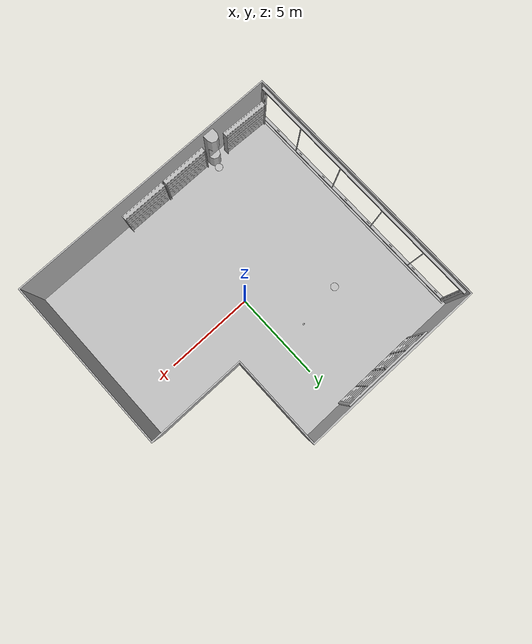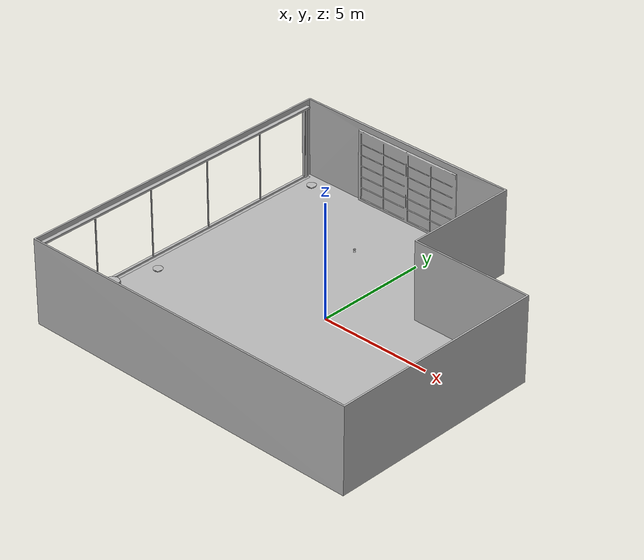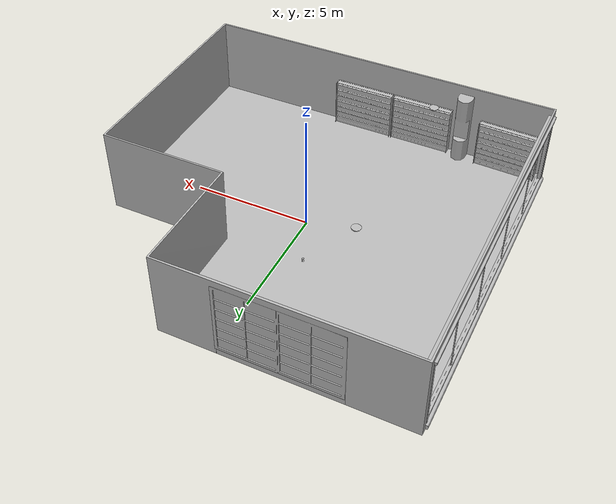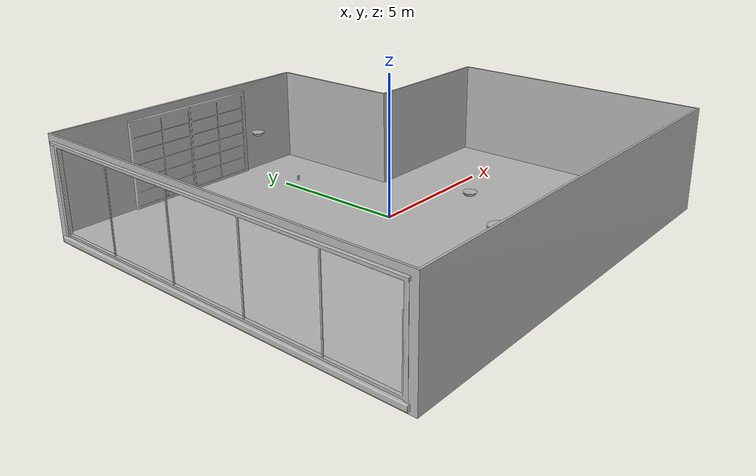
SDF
<sdf version="1.7">
 <world name="default">
  <model name="BookshelfB_01_001">
   <frame name="aws_robomaker_retail_BookshelfB_01::__model__" attached_to="aws_robomaker_retail_BookshelfB_01::link">
    <pose relative_to="__model__">0 0 0 0 -0 0</pose>
   </frame>
   <link name="aws_robomaker_retail_BookshelfB_01::link">
    <inertial>
     <mass>50</mass>
     <inertia><ixx>19.8742</ixx><ixy>0</ixy><ixz>0</ixz><iyy>49.1263</iyy><iyz>0</iyz><izz>30.2231</izz></inertia>
    </inertial>
    <collision name="collision">
     <geometry>
      <mesh>
       <uri>file://models/aws_robomaker_retail_BookshelfB_01/meshes/aws_BookshelfB_01_collision.DAE</uri>
       <scale>1 1 1</scale>
      </mesh>
     </geometry>
    </collision>
    <visual name="visual">
     <geometry>
      <mesh><uri>file://models/aws_robomaker_retail_BookshelfB_01/meshes/aws_BookshelfB_01_visual.DAE</uri></mesh>
     </geometry>
     <meta><layer>1</layer></meta>
    </visual>
    <pose relative_to="aws_robomaker_retail_BookshelfB_01::__model__">0 0 0 0 -0 0</pose>
   </link>
   <static>1</static>
   <pose>-6.18968 -6.78565 -0.008942 0.003533 0.000121 -0.032073</pose>
  </model>
  <model name="BookshelfB_01_002">
   <frame name="aws_robomaker_retail_BookshelfB_01::__model__" attached_to="aws_robomaker_retail_BookshelfB_01::link">
    <pose relative_to="__model__">0 0 0 0 -0 0</pose>
   </frame>
   <link name="aws_robomaker_retail_BookshelfB_01::link">
    <inertial>
     <mass>50</mass>
     <inertia><ixx>19.8742</ixx><ixy>0</ixy><ixz>0</ixz><iyy>49.1263</iyy><iyz>0</iyz><izz>30.2231</izz></inertia>
    </inertial>
    <collision name="collision">
     <geometry>
      <mesh>
       <uri>file://models/aws_robomaker_retail_BookshelfB_01/meshes/aws_BookshelfB_01_collision.DAE</uri>
       <scale>1 1 1</scale>
      </mesh>
     </geometry>
    </collision>
    <visual name="visual">
     <geometry>
      <mesh><uri>file://models/aws_robomaker_retail_BookshelfB_01/meshes/aws_BookshelfB_01_visual.DAE</uri></mesh>
     </geometry>
     <meta><layer>1</layer></meta>
    </visual>
    <pose relative_to="aws_robomaker_retail_BookshelfB_01::__model__">0 0 0 0 -0 0</pose>
   </link>
   <static>1</static>
   <pose>-2.20941 -6.97146 0.017074 -0.000128 -0.000252 0.000364</pose>
  </model>
  <model name="BookshelfB_01_003">
   <frame name="aws_robomaker_retail_BookshelfB_01::__model__" attached_to="aws_robomaker_retail_BookshelfB_01::link">
    <pose relative_to="__model__">0 0 0 0 -0 0</pose>
   </frame>
   <link name="aws_robomaker_retail_BookshelfB_01::link">
    <inertial>
     <mass>50</mass>
     <inertia><ixx>19.8742</ixx><ixy>0</ixy><ixz>0</ixz><iyy>49.1263</iyy><iyz>0</iyz><izz>30.2231</izz></inertia>
    </inertial>
    <collision name="collision">
     <geometry>
      <mesh>
       <uri>file://models/aws_robomaker_retail_BookshelfB_01/meshes/aws_BookshelfB_01_collision.DAE</uri>
       <scale>1 1 1</scale>
      </mesh>
     </geometry>
    </collision>
    <visual name="visual">
     <geometry>
      <mesh><uri>file://models/aws_robomaker_retail_BookshelfB_01/meshes/aws_BookshelfB_01_visual.DAE</uri></mesh>
     </geometry>
     <meta><layer>1</layer></meta>
    </visual>
    <pose relative_to="aws_robomaker_retail_BookshelfB_01::__model__">0 0 0 0 -0 0</pose>
   </link>
   <static>1</static>
   <pose>0.522246 -6.9715 0.017947 -0.003292 0 0</pose>
  </model>
  <model name="ColumnB_01_002">
   <frame name="aws_robomaker_retail_ColumnB_01::__model__" attached_to="aws_robomaker_retail_ColumnB_01::link">
    <pose relative_to="__model__">0 0 0 0 -0 0</pose>
   </frame>
   <link name="aws_robomaker_retail_ColumnB_01::link">
    <inertial>
     <mass>50</mass>
     <inertia><ixx>44.5597</ixx><ixy>0</ixy><ixz>0</ixz><iyy>44.5597</iyy><iyz>0</iyz><izz>1.87942</izz></inertia>
    </inertial>
    <collision name="collision">
     <geometry>
      <mesh>
       <uri>file://models/aws_robomaker_retail_ColumnB_01/meshes/aws_ColumnB_01_collision.DAE</uri>
       <scale>1 1 1</scale>
      </mesh>
     </geometry>
    </collision>
    <visual name="visual">
     <geometry>
      <mesh><uri>file://models/aws_robomaker_retail_ColumnB_01/meshes/aws_ColumnB_01_visual.DAE</uri></mesh>
     </geometry>
     <meta><layer>1</layer></meta>
    </visual>
    <pose relative_to="aws_robomaker_retail_ColumnB_01::__model__">0 0 0 0 -0 0</pose>
   </link>
   <static>1</static>
   <pose>-4.07623 -6.86071 0.017511 0.001895 -0.000628 -0.003755</pose>
  </model>
  <model name="SecurityCamera_01_001">
   <frame name="aws_robomaker_retail_SecurityCamera_01::__model__" attached_to="aws_robomaker_retail_SecurityCamera_01::link">
    <pose relative_to="__model__">0 0 0 0 -0 0</pose>
   </frame>
   <link name="aws_robomaker_retail_SecurityCamera_01::link">
    <inertial>
     <mass>1</mass>
     <inertia>
      <ixx>18.2222</ixx>
      <ixy>0</ixy>
      <ixz>0</ixz>
      <iyy>18.2222</iyy>
      <iyz>0</iyz>
      <izz>0.0018767</izz>
     </inertia>
    </inertial>
    <collision name="collision">
     <geometry>
      <mesh>
       <uri>file://models/aws_robomaker_retail_SecurityCamera_01/meshes/aws_SecurityCamera_01_collision.DAE</uri>
       <scale>1 1 1</scale>
      </mesh>
     </geometry>
    </collision>
    <visual name="visual">
     <geometry>
      <mesh>
       <uri>file://models/aws_robomaker_retail_SecurityCamera_01/meshes/aws_SecurityCamera_01_visual.DAE</uri>
      </mesh>
     </geometry>
     <meta><layer>2</layer></meta>
    </visual>
    <pose relative_to="aws_robomaker_retail_SecurityCamera_01::__model__">0 0 0 0 -0 0</pose>
   </link>
   <static>1</static>
   <pose>-1.30881 2.97371 1.03776 -0.004006 -9.7e-05 -0.01066</pose>
  </model>
  <model name="DoorB_01_001">
   <frame name="aws_robomaker_retail_DoorB_01::__model__" attached_to="aws_robomaker_retail_DoorB_01::link">
    <pose relative_to="__model__">0 0 0 0 -0 0</pose>
   </frame>
   <link name="aws_robomaker_retail_DoorB_01::link">
    <inertial>
     <mass>50</mass>
     <inertia><ixx>44.5597</ixx><ixy>0</ixy><ixz>0</ixz><iyy>151.699</iyy><iyz>0</iyz><izz>107.806</izz></inertia>
    </inertial>
    <collision name="collision">
     <geometry>
      <mesh>
       <uri>file://models/aws_robomaker_retail_DoorB_01/meshes/aws_DoorB_01_collision.DAE</uri>
       <scale>1 1 1</scale>
      </mesh>
     </geometry>
    </collision>
    <visual name="visual">
     <geometry>
      <mesh><uri>file://models/aws_robomaker_retail_DoorB_01/meshes/aws_DoorB_01_visual.DAE</uri></mesh>
     </geometry>
     <meta><layer>2</layer></meta>
    </visual>
    <pose relative_to="aws_robomaker_retail_DoorB_01::__model__">0 0 0 0 -0 0</pose>
   </link>
   <static>1</static>
   <pose>-2.49246 7.21937 -0.035203 0 -0 0</pose>
  </model>
  <model name="RetailShopFloor_01_001">
   <frame name="aws_robomaker_retail_RetailShopFloor_01::__model__" attached_to="aws_robomaker_retail_RetailShopFloor_01::link">
    <pose relative_to="__model__">0 0 0 0 -0 0</pose>
   </frame>
   <link name="aws_robomaker_retail_RetailShopFloor_01::link">
    <inertial><mass>100</mass></inertial>
    <collision name="collision">
     <geometry>
      <mesh>
       <uri>file://models/aws_robomaker_retail_RetailShopFloor_01/meshes/aws_RetailShopFloor_01_collision.DAE</uri>
       <scale>1 1 1</scale>
      </mesh>
     </geometry>
     <surface><friction><ode><mu>100</mu><mu2>50</mu2></ode></friction></surface>
    </collision>
    <visual name="visual">
     <geometry>
      <mesh>
       <uri>file://models/aws_robomaker_retail_RetailShopFloor_01/meshes/aws_RetailShopFloor_01_visual.DAE</uri>
      </mesh>
     </geometry>
     <meta><layer>1</layer></meta>
    </visual>
    <pose relative_to="aws_robomaker_retail_RetailShopFloor_01::__model__">0 0 0 0 -0 0</pose>
   </link>
   <static>1</static>
   <pose>-0.002687 0 -0.276618 0 -0 0</pose>
  </model>
  <model name="RetailShopWall_01_001">
   <frame name="aws_robomaker_retail_RetailShopWall_01::__model__" attached_to="aws_robomaker_retail_RetailShopWall_01::link">
    <pose relative_to="__model__">0 0 0 0 -0 0</pose>
   </frame>
   <link name="aws_robomaker_retail_RetailShopWall_01::link">
    <inertial><mass>1</mass></inertial>
    <collision name="collision">
     <geometry>
      <mesh>
       <uri>file://models/aws_robomaker_retail_RetailShopWall_01/meshes/aws_RetailShopWall_01_collision.DAE</uri>
       <scale>1 1 1</scale>
      </mesh>
     </geometry>
    </collision>
    <visual name="visual">
     <geometry>
      <mesh>
       <uri>file://models/aws_robomaker_retail_RetailShopWall_01/meshes/aws_RetailShopWall_01_visual.DAE</uri>
      </mesh>
     </geometry>
     <meta><layer>2</layer></meta>
    </visual>
    <pose relative_to="aws_robomaker_retail_RetailShopWall_01::__model__">0 0 0 0 -0 0</pose>
   </link>
   <static>1</static>
   <pose>0 0 -0.281282 0 -0 0</pose>
  </model>
  <model name="LightA_01_004">
   <frame name="aws_robomaker_retail_LightA_01::__model__" attached_to="aws_robomaker_retail_LightA_01::link">
    <pose relative_to="__model__">0 0 0 0 -0 0</pose>
   </frame>
   <link name="aws_robomaker_retail_LightA_01::link">
    <inertial><mass>1</mass></inertial>
    <collision name="collision">
     <geometry>
      <mesh>
       <uri>file://models/aws_robomaker_retail_LightA_01/meshes/aws_LightA_01_collision.DAE</uri>
       <scale>1 1 1</scale>
      </mesh>
     </geometry>
    </collision>
    <visual name="visual">
     <geometry>
      <mesh><uri>file://models/aws_robomaker_retail_LightA_01/meshes/aws_LightA_01_visual.DAE</uri></mesh>
     </geometry>
     <meta><layer>3</layer></meta>
    </visual>
    <pose relative_to="aws_robomaker_retail_LightA_01::__model__">0 0 0 0 -0 0</pose>
   </link>
   <static>1</static>
   <pose>-3.21067 -5.38371 3.15033 0 -0 0</pose>
  </model>
  <model name="LightA_01_005">
   <frame name="aws_robomaker_retail_LightA_01::__model__" attached_to="aws_robomaker_retail_LightA_01::link">
    <pose relative_to="__model__">0 0 0 0 -0 0</pose>
   </frame>
   <link name="aws_robomaker_retail_LightA_01::link">
    <inertial><mass>1</mass></inertial>
    <collision name="collision">
     <geometry>
      <mesh>
       <uri>file://models/aws_robomaker_retail_LightA_01/meshes/aws_LightA_01_collision.DAE</uri>
       <scale>1 1 1</scale>
      </mesh>
     </geometry>
    </collision>
    <visual name="visual">
     <geometry>
      <mesh><uri>file://models/aws_robomaker_retail_LightA_01/meshes/aws_LightA_01_visual.DAE</uri></mesh>
     </geometry>
     <meta><layer>3</layer></meta>
    </visual>
    <pose relative_to="aws_robomaker_retail_LightA_01::__model__">0 0 0 0 -0 0</pose>
   </link>
   <static>1</static>
   <pose>-3.271 2.68593 3.15033 0 -0 0</pose>
  </model>
  <model name="ShopWindow_01_001">
   <frame name="aws_robomaker_retail_ShopWindow_01::__model__" attached_to="aws_robomaker_retail_ShopWindow_01::link">
    <pose relative_to="__model__">0 0 0 0 -0 0</pose>
   </frame>
   <link name="aws_robomaker_retail_ShopWindow_01::link">
    <inertial><mass>1</mass></inertial>
    <collision name="collision">
     <geometry>
      <mesh>
       <uri>file://models/aws_robomaker_retail_ShopWindow_01/meshes/aws_ShopWindow_01_collision.DAE</uri>
       <scale>1 1 1</scale>
      </mesh>
     </geometry>
    </collision>
    <visual name="visual">
     <geometry>
      <mesh><uri>file://models/aws_robomaker_retail_ShopWindow_01/meshes/aws_ShopWindow_01_visual.DAE</uri></mesh>
     </geometry>
    </visual>
    <pose relative_to="aws_robomaker_retail_ShopWindow_01::__model__">0 0 0 0 -0 0</pose>
   </link>
   <static>1</static>
   <pose>-7.73816 0.01596 -0.180092 0 -0 0</pose>
  </model>
 </world>
</sdf>
